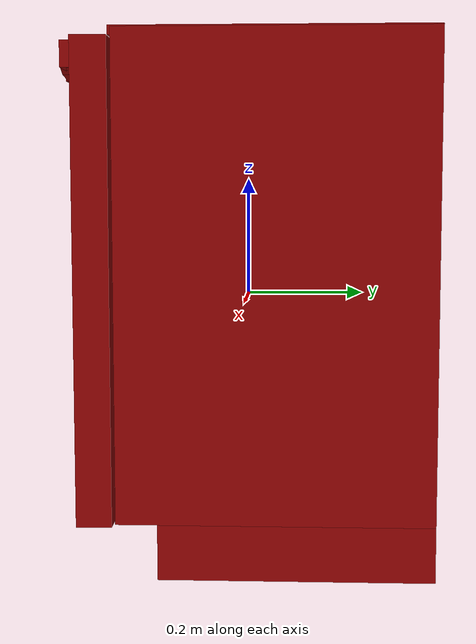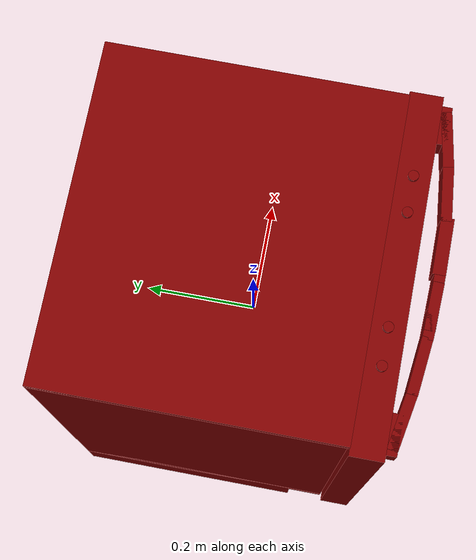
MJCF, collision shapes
<mujoco model="model">
  <compiler angle="radian"/>
  <asset>
    <mesh file="visuals/Body001.obj" name="Body001_vis"/>
    <mesh file="visuals/Button001.obj" name="Button001_vis"/>
    <mesh file="visuals/Button002.obj" name="Button002_vis"/>
    <mesh file="visuals/Button003.obj" name="Button003_vis"/>
    <mesh file="visuals/Button004.obj" name="Button004_vis"/>
    <mesh file="visuals/Container001.obj" name="Container001_vis"/>
    <mesh file="visuals/Container002.obj" name="Container002_vis"/>
    <mesh file="visuals/Door001.obj" name="Door001_vis"/>
    <mesh file="visuals/Handle001.obj" name="Handle001_vis"/>
    <texture file="visuals/T_BC001.png" name="Body001_material" type="2d"/>
    <material name="Body001_material" rgba="1 1 1 1.0" texture="Body001_material" shininess="0.4472135901451111" specular="2"/>
    <texture file="visuals/T_BC001.png" name="Container001_material" type="2d"/>
    <material name="Container001_material" rgba="1 1 1 1.0" texture="Container001_material" shininess="0.4472135901451111" specular="8"/>
    <texture file="visuals/T_BC001.png" name="Container002_material" type="2d"/>
    <material name="Container002_material" rgba="1 1 1 1.0" texture="Container002_material" shininess="0.4472135901451111" specular="8"/>
    <texture file="visuals/T_BC001.png" name="Door001_material" type="2d"/>
    <material name="Door001_material" rgba="1 1 1 1.0" texture="Door001_material" shininess="0.4472135901451111" specular="2"/>
    <texture file="visuals/T_BC001.png" name="Button001_material" type="2d"/>
    <material name="Button001_material" rgba="1 1 1 1.0" texture="Button001_material" shininess="0.4472135901451111" specular="0.3103448502657381"/>
    <texture file="visuals/T_BC001.png" name="Button002_material" type="2d"/>
    <material name="Button002_material" rgba="1 1 1 1.0" texture="Button002_material" shininess="0.4472135901451111" specular="0.3103448502657381"/>
    <texture file="visuals/T_BC001.png" name="Button003_material" type="2d"/>
    <material name="Button003_material" rgba="1 1 1 1.0" texture="Button003_material" shininess="0.4472135901451111" specular="0.3103448502657381"/>
    <texture file="visuals/T_BC001.png" name="Button004_material" type="2d"/>
    <material name="Button004_material" rgba="1 1 1 1.0" texture="Button004_material" shininess="0.4472135901451111" specular="0.3103448502657381"/>
    <texture file="visuals/T_BC001.png" name="Handle001_material" type="2d"/>
    <material name="Handle001_material" rgba="1 1 1 1.0" texture="Handle001_material" shininess="0.4472135901451111" specular="0.3103448502657381"/>
  </asset>
  <default>
    <default class="visual">
      <geom conaffinity="0" contype="0" group="1" type="mesh"/>
    </default>
    <default class="collision">
      <geom group="0" rgba="0.5 0 0 0.5"/>
    </default>
    <default class="spawn">
      <geom group="0" rgba="1 1 1 0.5" contype="0" conaffinity="0"/>
      <site group="0" rgba="1 1 1 0.5"/>
    </default>
    <default class="region">
      <geom group="1" conaffinity="0" contype="0" rgba="0 1 0 0"/>
    </default>
  </default>
  <worldbody>
    <body>
      <body name="object">
        <geom mesh="Body001_vis" type="mesh" solimp="0.998 0.998 0.001" solref="0.001 1" density="100" friction="0.95 0.3 0.1" class="visual" material="Body001_material"/>
        <geom class="collision" type="box" pos="-0.0007308664498850703 0.04945285990834236 0.4159942865371704" size="0.2864617109298706 0.24883979558944702 0.007124520372599363" quat="1.0 0.0 0.0 0.0"/>
        <geom class="collision" type="box" pos="-0.0007308664498850703 0.2926587462425232 0.044621143490076065" size="0.2864617109298706 0.005633918568491936 0.3784976303577423" quat="1.0 0.0 0.0 0.0"/>
        <geom class="collision" type="box" pos="-0.0007308664498850703 0.08387073129415512 -0.37087827920913696" size="0.2864617109298706 0.21442194283008575 0.05256768316030502" quat="1.0 0.0 0.0 0.0"/>
        <geom class="collision" type="box" pos="-0.27617979049682617 0.05121469870209694 0.042341411113739014" size="0.011012788861989975 0.24707798659801483 0.3788338303565979" quat="1.0 0.0 0.0 0.0"/>
        <geom class="collision" type="box" pos="-0.0007308664498850703 0.05121469870209694 -0.32644563913345337" size="0.2864617109298706 0.24707798659801483 0.010046815499663353" quat="1.0 0.0 0.0 0.0"/>
        <geom class="collision" type="box" pos="0.2750309407711029 0.05132951959967613 0.042341411113739014" size="0.011012788861989975 0.24696315824985504 0.3788338303565979" quat="1.0 0.0 0.0 0.0"/>
        <geom class="collision" type="box" pos="-0.2558290362358093 0.047974489629268646 0.11897565424442291" size="0.01504360418766737 0.1966976374387741 0.003943512216210365" quat="1.0 0.0 0.0 0.0"/>
        <geom class="collision" type="box" pos="-0.2558290362358093 0.047974489629268646 -0.11146925389766693" size="0.01504360418766737 0.1966976374387741 0.003943512216210365" quat="1.0 0.0 0.0 0.0"/>
        <geom class="collision" type="box" pos="0.2549496591091156 0.047974489629268646 -0.11146925389766693" size="0.01504360418766737 0.1966976374387741 0.003943512216210365" quat="1.0 0.0 0.0 0.0"/>
        <geom class="collision" type="box" pos="0.2549496591091156 0.047974489629268646 0.11905429512262344" size="0.01504360418766737 0.1966976374387741 0.003943512216210365" quat="1.0 0.0 0.0 0.0"/>
        <body name="Container001">
          <joint axis="0.0 -1.0 0.0" pos="-0.00041353609412908554 0.04298144578933716 0.1755363494157791" limited="true" name="Container001_joint" range="0.0 0.2" type="slide" damping="1" frictionloss="1" armature=".01" stiffness="0.05"/>
          <geom mesh="Container001_vis" type="mesh" solimp="0.998 0.998 0.001" solref="0.001 1" density="100" friction="0.95 0.3 0.1" class="visual" material="Container001_material"/>
          <geom class="collision" type="box" pos="0.0005476865917444229 -0.14163810014724731 0.17431412637233734" size="0.24674782156944275 0.009994144551455975 0.050437211990356445" quat="1.0 0.0 0.0 0.0"/>
          <geom class="collision" type="box" pos="0.24486172199249268 0.0498565211892128 0.17431412637233734" size="0.008622540161013603 0.18876564502716064 0.050437211990356445" quat="1.0 0.0 0.0 0.0"/>
          <geom class="collision" type="box" pos="-0.2450392246246338 0.0498565211892128 0.17431412637233734" size="0.008622540161013603 0.18876564502716064 0.050437211990356445" quat="1.0 0.0 0.0 0.0"/>
          <geom class="collision" type="box" pos="0.0005476865917444229 0.049522366374731064 0.12846329808235168" size="0.24674773216247559 0.18909978866577148 0.004586523398756981" quat="1.0 0.0 0.0 0.0"/>
          <geom class="collision" type="box" pos="0.0005476865917444229 0.22862860560417175 0.17431412637233734" size="0.2467477023601532 0.009994138963520527 0.050437211990356445" quat="1.0 0.0 0.0 0.0"/>
        </body>
        <body name="Container002">
          <joint axis="0.0 -1.0 0.0" pos="0.0005502508720383048 0.04298141598701477 -0.05469118058681488" limited="true" name="Container002_joint" range="0.0 0.2" type="slide" damping="1" frictionloss="1" armature=".01" stiffness="0.05"/>
          <geom mesh="Container002_vis" type="mesh" solimp="0.998 0.998 0.001" solref="0.001 1" density="100" friction="0.95 0.3 0.1" class="visual" material="Container002_material"/>
          <geom class="collision" type="box" pos="0.0005476865917444229 0.22862860560417175 -0.05505993962287903" size="0.24674788117408752 0.009994151070713997 0.05043725669384003" quat="1.0 0.0 0.0 0.0"/>
          <geom class="collision" type="box" pos="0.0005476865917444229 0.049522366374731064 -0.10091076791286469" size="0.2467479705810547 0.18910002708435059 0.004586530849337578" quat="1.0 0.0 0.0 0.0"/>
          <geom class="collision" type="box" pos="-0.2450392246246338 0.0498565211892128 -0.05505993962287903" size="0.008622558787465096 0.18876594305038452 0.050437286496162415" quat="1.0 0.0 0.0 0.0"/>
          <geom class="collision" type="box" pos="0.24486172199249268 0.0498565211892128 -0.05505993962287903" size="0.008622562512755394 0.1887660026550293 0.05043730139732361" quat="1.0 0.0 0.0 0.0"/>
          <geom class="collision" type="box" pos="0.0005476865917444229 -0.14163810014724731 -0.05505993962287903" size="0.24674825370311737 0.009994170628488064 0.0504373162984848" quat="1.0 0.0 0.0 0.0"/>
        </body>
        <body name="Door001">
          <joint axis="1.0 0.0 0.0" pos="-7.450580596923828e-09 -0.19827471673488617 -0.33413323760032654" limited="true" name="Door001_joint" range="0.0 0.5235987755982988" type="hinge" damping="1" frictionloss="1" armature=".01" stiffness="3" springref="-2"/>
          <geom mesh="Door001_vis" type="mesh" solimp="0.998 0.998 0.001" solref="0.001 1" density="100" friction="0.95 0.3 0.1" class="visual" material="Door001_material"/>
          <geom class="collision" type="box" pos="0.0003735870704986155 -0.22678938508033752 0.03508085384964943" size="0.2982136309146881 0.027556490153074265 0.37231120467185974" quat="1.0 0.0 0.0 0.0"/>
          <geom class="collision" type="box" pos="0.00010438510798849165 -0.18462878465652466 0.040578991174697876" size="0.25446009635925293 0.02688170224428177 0.34156423807144165" quat="1.0 0.0 0.0 0.0"/>
          <body name="Button001">
            <joint axis="0.0 0.0 -1.0" pos="-0.15545640885829926 -0.2257876992225647 0.41416501998901367" limited="true" name="Button001_joint" range="0.0 0.001" type="slide" damping="1" frictionloss="1" armature=".01" stiffness="1" springref="-0.4"/>
            <geom mesh="Button001_vis" type="mesh" solimp="0.998 0.998 0.001" solref="0.001 1" density="100" friction="0.95 0.3 0.1" class="visual" material="Button001_material"/>
            <geom class="collision" type="cylinder" pos="-0.15556800365447998 -0.22610458731651306 0.4142935276031494" size="0.008599499240517616 0.0031159764621406794" quat="1.0 0.0 0.0 0.0"/>
          </body>
          <body name="Button002">
            <joint axis="0.0 0.0 -1.0" pos="-0.09383853524923325 -0.2257876992225647 0.41416501998901367" limited="true" name="Button002_joint" range="0.0 0.001" type="slide" damping="1" frictionloss="1" armature=".01" stiffness="1" springref="-0.4"/>
            <geom mesh="Button002_vis" type="mesh" solimp="0.998 0.998 0.001" solref="0.001 1" density="100" friction="0.95 0.3 0.1" class="visual" material="Button002_material"/>
            <geom class="collision" type="cylinder" pos="-0.09415153414011002 -0.22610458731651306 0.4142935276031494" size="0.008599499240517616 0.0031159764621406794" quat="1.0 0.0 0.0 0.0"/>
          </body>
          <body name="Button003">
            <joint axis="0.0 0.0 -1.0" pos="0.09270655363798141 -0.2257876992225647 0.41416501998901367" limited="true" name="Button003_joint" range="0.0 0.001" type="slide" damping="1" frictionloss="1" armature=".01" stiffness="1" springref="-0.4"/>
            <geom mesh="Button003_vis" type="mesh" solimp="0.998 0.998 0.001" solref="0.001 1" density="100" friction="0.95 0.3 0.1" class="visual" material="Button003_material"/>
            <geom class="collision" type="cylinder" pos="0.09289846569299698 -0.22610458731651306 0.4142935276031494" size="0.008599499240517616 0.0031159764621406794" quat="1.0 0.0 0.0 0.0"/>
          </body>
          <body name="Button004">
            <joint axis="0.0 0.0 -1.0" pos="0.1543249934911728 -0.2257876992225647 0.41416501998901367" limited="true" name="Button004_joint" range="0.0 0.001" type="slide" damping="1" frictionloss="1" armature=".01" stiffness="1" springref="-0.4"/>
            <geom mesh="Button004_vis" type="mesh" solimp="0.998 0.998 0.001" solref="0.001 1" density="100" friction="0.95 0.3 0.1" class="visual" material="Button004_material"/>
            <geom class="collision" type="cylinder" pos="0.15431830286979675 -0.22610458731651306 0.4142935276031494" size="0.008599499240517616 0.0031159764621406794" quat="1.0 0.0 0.0 0.0"/>
          </body>
          <body name="Handle001">
            <geom mesh="Handle001_vis" type="mesh" solimp="0.998 0.998 0.001" solref="0.001 1" density="100" friction="0.95 0.3 0.1" class="visual" material="Handle001_material"/>
            <geom class="collision" type="box" pos="-0.23101474344730377 -0.2711302638053894 0.38173919916152954" size="0.04660938307642937 0.008954321034252644 0.019917838275432587" quat="7.52008944004956e-08 0.9960660338401794 -0.08861380815505981 -6.690157761113369e-09"/>
            <geom class="collision" type="box" pos="-0.14150470495224 -0.2842082679271698 0.38173919916152954" size="0.04660938307642937 0.008954321034252644 0.019917838275432587" quat="7.538834267961647e-08 0.9985488653182983 -0.05385306850075722 -4.06579525602524e-09"/>
            <geom class="collision" type="box" pos="-0.052202045917510986 -0.2910316288471222 0.38173919916152954" size="0.04660938307642937 0.008954321034252644 0.019917838275432587" quat="7.54827382820622e-08 0.9997991323471069 -0.020041802898049355 -1.5131127462097993e-09"/>
            <geom class="collision" type="box" pos="-0.25305619835853577 -0.2562609612941742 0.38173919916152954" size="0.03264765068888664 0.015286944806575775 0.019917840138077736" quat="1.0 0.0 0.0 0.0"/>
            <geom class="collision" type="box" pos="-0.03785296157002449 -0.29147854447364807 0.38173919916152954" size="0.04660938307642937 0.008954321034252644 0.019917838275432587" quat="0.9998915195465088 0.0 0.0 -0.014729317277669907"/>
            <geom class="collision" type="box" pos="0.05306859314441681 -0.29100507497787476 0.38173919916152954" size="0.04693078622221947 0.010815020650625229 0.019917838275432587" quat="1.0 0.0 0.0 0.0"/>
            <geom class="collision" type="box" pos="0.14104533195495605 -0.2842082679271698 0.38173919916152954" size="0.04660938307642937 0.008954321034252644 0.019917838275432587" quat="0.9985488653182983 0.0 0.0 0.05385307967662811"/>
            <geom class="collision" type="box" pos="0.23055537045001984 -0.2711302638053894 0.38173919916152954" size="0.04660938307642937 0.008954321034252644 0.019917838275432587" quat="0.9960660338401794 0.0 0.0 0.08861380815505981"/>
            <geom class="collision" type="box" pos="0.25259682536125183 -0.2562609612941742 0.38173919916152954" size="0.03264765068888664 0.015286942012608051 0.019917838275432587" quat="1.0 0.0 0.0 0.0"/>
          </body>
        </body>
        <geom class="region" name="reg_main" type="box" pos="0.0 0.02066923677921295 0.0" size="0.2977163791656494 0.27662062644958496 0.4221954941749573"/>
        <geom class="region" name="reg_int" type="box" pos="1.436471939086914e-05 0.034757792949676514 0.04487574100494385" size="0.2604510486125946 0.24189874529838562 0.35794544219970703"/>
      </body>
    </body>
  </worldbody>
  <actuator>
    <motor name="Container001_joint_actuator" joint="Container001_joint" gear="10"/>
    <motor name="Container002_joint_actuator" joint="Container002_joint" gear="10"/>
    <motor name="Door001_joint_actuator" joint="Door001_joint" gear="100"/>
    <motor name="Button001_joint_actuator" joint="Button001_joint" gear="0.5"/>
    <motor name="Button002_joint_actuator" joint="Button002_joint" gear="0.5"/>
    <motor name="Button003_joint_actuator" joint="Button003_joint" gear="0.5"/>
    <motor name="Button004_joint_actuator" joint="Button004_joint" gear="0.5"/>
  </actuator>
</mujoco>
